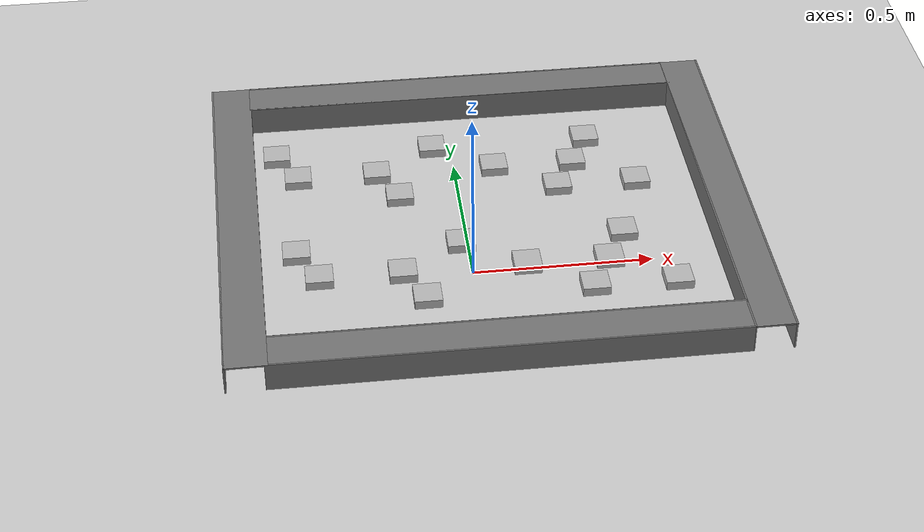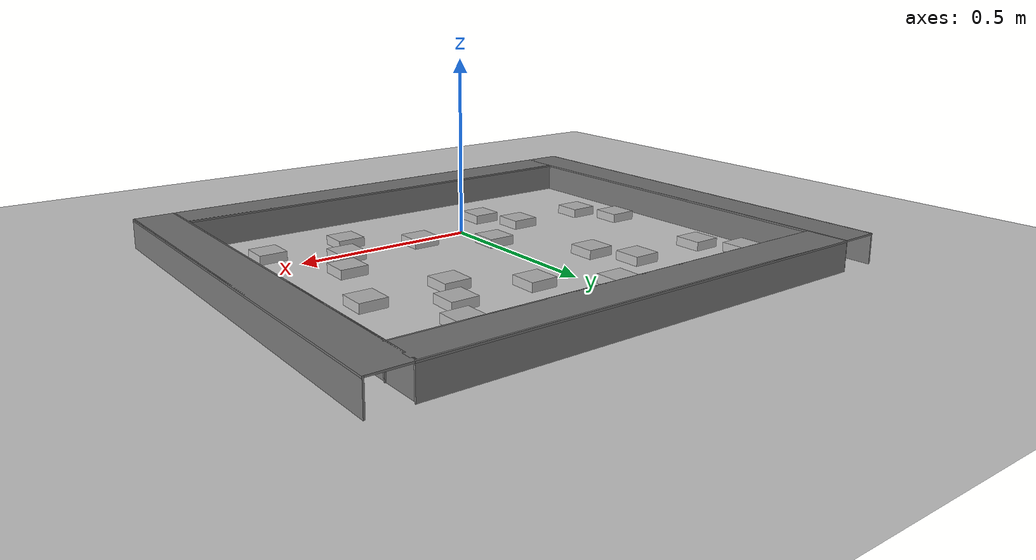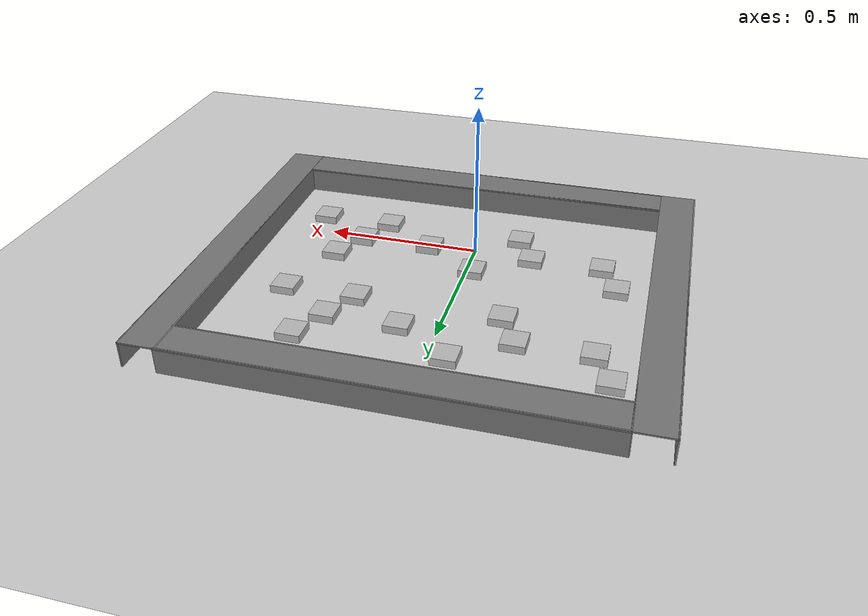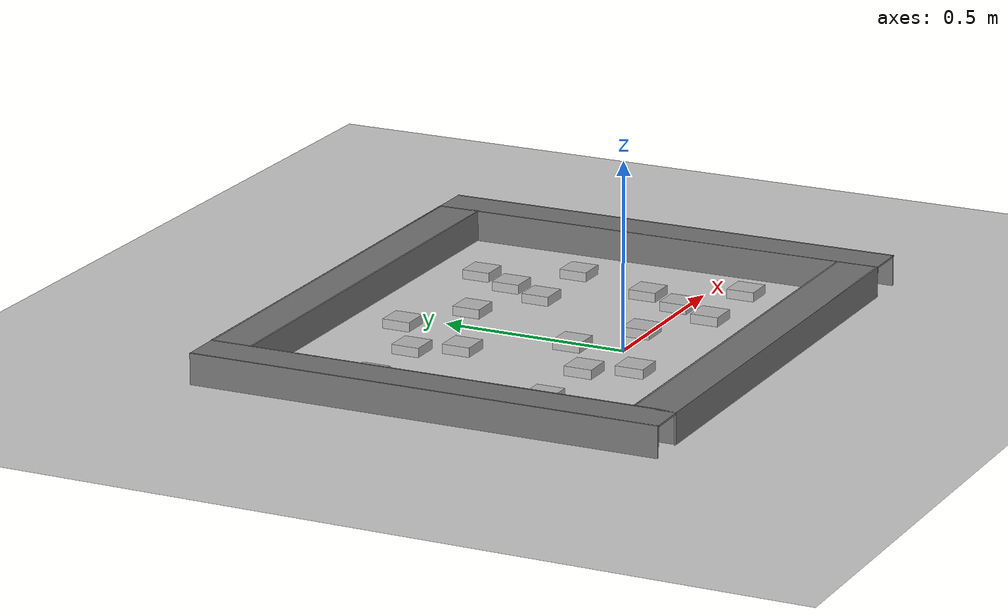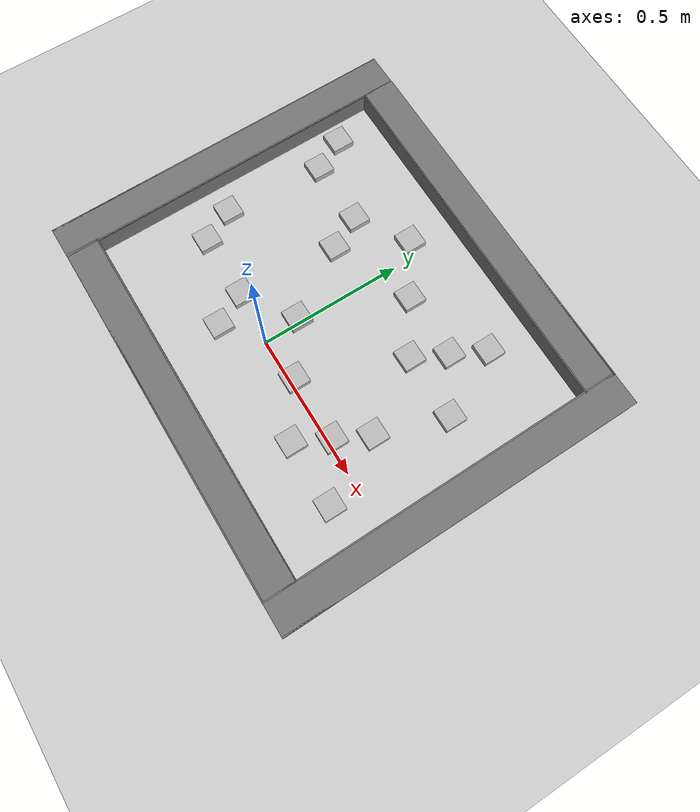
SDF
<sdf version="1.6">
 <world name="default">
  <physics type="ode">
   <ode><solver><type>quick</type><iters>50</iters><friction_model>cone_model</friction_model></solver></ode>
  </physics>
  <light name="sun" type="directional">
   <pose>0 0 10 0 -0 0</pose>
   <diffuse>0.8 0.8 0.8 1</diffuse>
   <specular>0.2 0.2 0.2 1</specular>
   <attenuation>
    <range>1000</range>
    <constant>0.9</constant>
    <linear>0.01</linear>
    <quadratic>0.001</quadratic>
   </attenuation>
   <direction>-0.5 0.1 -0.9</direction>
  </light>
  <model name="ground_plane">
   <static>1</static>
   <link name="link">
    <collision name="collision">
     <geometry><plane><normal>0 0 1</normal><size>100 100</size></plane></geometry>
     <surface>
      <contact><collide_bitmask>65535</collide_bitmask></contact>
      <friction><ode><mu>100</mu><mu2>50</mu2></ode></friction>
     </surface>
    </collision>
    <visual name="visual">
     <cast_shadows>0</cast_shadows>
     <geometry><plane><normal>0 0 1</normal><size>100 100</size></plane></geometry>
     <material>
      <script><uri>file://media/materials/scripts/gazebo.material</uri><name>Gazebo/Grey</name></script>
     </material>
    </visual>
   </link>
  </model>
  <gravity>0 0 -9.8</gravity>
  <magnetic_field>6e-06 2.3e-05 -4.2e-05</magnetic_field>
  <atmosphere type="adiabatic"/>
  <physics name="default_physics" default="0" type="ode">
   <max_step_size>0.001</max_step_size>
   <real_time_factor>1</real_time_factor>
   <real_time_update_rate>1000</real_time_update_rate>
  </physics>
  <scene><ambient>0.4 0.4 0.4 1</ambient><background>0.7 0.7 0.7 1</background><shadows>1</shadows></scene>
  <audio><device>default</device></audio>
  <spherical_coordinates>
   <surface_model>EARTH_WGS84</surface_model>
   <latitude_deg>0</latitude_deg>
   <longitude_deg>0</longitude_deg>
   <elevation>0</elevation>
   <heading_deg>0</heading_deg>
  </spherical_coordinates>
  <model name="frc2016_roughterrain">
   <static>1</static>
   <link name="link">
    <visual name="platform">
     <pose>0 0 0.08269 0 -0 0</pose>
     <geometry><box><size>1.27 0.5969 0.003175</size></box></geometry>
    </visual>
    <collision name="platform">
     <pose>0 0 0.08269 0 -0 0</pose>
     <geometry><box><size>1.27 0.5969 0.003175</size></box></geometry>
    </collision>
    <visual name="row1_block1_sm">
     <pose>0.51435 0.1143 0.09698 0 -0 0</pose>
     <geometry><box><size>0.0762 0.0762 0.0254</size></box></geometry>
    </visual>
    <collision name="row1_block1_sm">
     <pose>0.51435 0.1143 0.09698 0 -0 0</pose>
     <geometry><box><size>0.0762 0.0762 0.0254</size></box></geometry>
    </collision>
    <visual name="row1_block2_lg">
     <pose>0.40005 0.1143 0.12238 0 -0 0</pose>
     <geometry><box><size>0.0762 0.0762 0.0762</size></box></geometry>
    </visual>
    <collision name="row1_block2_lg">
     <pose>0.40005 0.1143 0.12238 0 -0 0</pose>
     <geometry><box><size>0.0762 0.0762 0.0762</size></box></geometry>
    </collision>
    <visual name="row1_block3_md">
     <pose>0.28575 0.1143 0.10968 0 -0 0</pose>
     <geometry><box><size>0.0762 0.0762 0.0508</size></box></geometry>
    </visual>
    <collision name="row1_block3_md">
     <pose>0.28575 0.1143 0.10968 0 -0 0</pose>
     <geometry><box><size>0.0762 0.0762 0.0508</size></box></geometry>
    </collision>
    <visual name="row1_block4_sm">
     <pose>0.17145 0.1143 0.09698 0 -0 0</pose>
     <geometry><box><size>0.0762 0.0762 0.0254</size></box></geometry>
    </visual>
    <collision name="row1_block4_sm">
     <pose>0.17145 0.1143 0.09698 0 -0 0</pose>
     <geometry><box><size>0.0762 0.0762 0.0254</size></box></geometry>
    </collision>
    <visual name="row1_block5_md">
     <pose>0.05715 0.1143 0.10968 0 -0 0</pose>
     <geometry><box><size>0.0762 0.0762 0.0508</size></box></geometry>
    </visual>
    <collision name="row1_block5_md">
     <pose>0.05715 0.1143 0.10968 0 -0 0</pose>
     <geometry><box><size>0.0762 0.0762 0.0508</size></box></geometry>
    </collision>
    <visual name="row1_block6_lg">
     <pose>-0.05715 0.1143 0.12238 0 -0 0</pose>
     <geometry><box><size>0.0762 0.0762 0.0762</size></box></geometry>
    </visual>
    <collision name="row1_block6_lg">
     <pose>-0.05715 0.1143 0.12238 0 -0 0</pose>
     <geometry><box><size>0.0762 0.0762 0.0762</size></box></geometry>
    </collision>
    <visual name="row1_block7_sm">
     <pose>-0.17145 0.1143 0.09698 0 -0 0</pose>
     <geometry><box><size>0.0762 0.0762 0.0254</size></box></geometry>
    </visual>
    <collision name="row1_block7_sm">
     <pose>-0.17145 0.1143 0.09698 0 -0 0</pose>
     <geometry><box><size>0.0762 0.0762 0.0254</size></box></geometry>
    </collision>
    <visual name="row1_block8_sm">
     <pose>-0.28575 0.1143 0.09698 0 -0 0</pose>
     <geometry><box><size>0.0762 0.0762 0.0254</size></box></geometry>
    </visual>
    <collision name="row1_block8_sm">
     <pose>-0.28575 0.1143 0.09698 0 -0 0</pose>
     <geometry><box><size>0.0762 0.0762 0.0254</size></box></geometry>
    </collision>
    <visual name="row1_block9_md">
     <pose>-0.40005 0.1143 0.10968 0 -0 0</pose>
     <geometry><box><size>0.0762 0.0762 0.0508</size></box></geometry>
    </visual>
    <collision name="row1_block9_md">
     <pose>-0.40005 0.1143 0.10968 0 -0 0</pose>
     <geometry><box><size>0.0762 0.0762 0.0508</size></box></geometry>
    </collision>
    <visual name="row1_block10_lg">
     <pose>-0.51435 0.1143 0.12238 0 -0 0</pose>
     <geometry><box><size>0.0762 0.0762 0.0762</size></box></geometry>
    </visual>
    <collision name="row1_block10_lg">
     <pose>-0.51435 0.1143 0.12238 0 -0 0</pose>
     <geometry><box><size>0.0762 0.0762 0.0762</size></box></geometry>
    </collision>
    <visual name="row2_block1_md">
     <pose>0.5715 0 0.10968 0 -0 0</pose>
     <geometry><box><size>0.0762 0.0762 0.0508</size></box></geometry>
    </visual>
    <collision name="row2_block1_md">
     <pose>0.5715 0 0.10968 0 -0 0</pose>
     <geometry><box><size>0.0762 0.0762 0.0508</size></box></geometry>
    </collision>
    <visual name="row2_block2_sm">
     <pose>0.4572 0 0.09698 0 -0 0</pose>
     <geometry><box><size>0.0762 0.0762 0.0254</size></box></geometry>
    </visual>
    <collision name="row2_block2_sm">
     <pose>0.4572 0 0.09698 0 -0 0</pose>
     <geometry><box><size>0.0762 0.0762 0.0254</size></box></geometry>
    </collision>
    <visual name="row2_block3_lg">
     <pose>0.3429 0 0.12238 0 -0 0</pose>
     <geometry><box><size>0.0762 0.0762 0.0762</size></box></geometry>
    </visual>
    <collision name="row2_block3_lg">
     <pose>0.3429 0 0.12238 0 -0 0</pose>
     <geometry><box><size>0.0762 0.0762 0.0762</size></box></geometry>
    </collision>
    <visual name="row2_block4_md">
     <pose>0.2286 0 0.10968 0 -0 0</pose>
     <geometry><box><size>0.0762 0.0762 0.0508</size></box></geometry>
    </visual>
    <collision name="row2_block4_md">
     <pose>0.2286 0 0.10968 0 -0 0</pose>
     <geometry><box><size>0.0762 0.0762 0.0508</size></box></geometry>
    </collision>
    <visual name="row2_block5_lg">
     <pose>0.1143 0 0.12238 0 -0 0</pose>
     <geometry><box><size>0.0762 0.0762 0.0762</size></box></geometry>
    </visual>
    <collision name="row2_block5_lg">
     <pose>0.1143 0 0.12238 0 -0 0</pose>
     <geometry><box><size>0.0762 0.0762 0.0762</size></box></geometry>
    </collision>
    <visual name="row2_block6_sm">
     <pose>0 0 0.09698 0 -0 0</pose>
     <geometry><box><size>0.0762 0.0762 0.0254</size></box></geometry>
    </visual>
    <collision name="row2_block6_sm">
     <pose>0 0 0.09698 0 -0 0</pose>
     <geometry><box><size>0.0762 0.0762 0.0254</size></box></geometry>
    </collision>
    <visual name="row2_block7_md">
     <pose>-0.1143 0 0.10968 0 -0 0</pose>
     <geometry><box><size>0.0762 0.0762 0.0508</size></box></geometry>
    </visual>
    <collision name="row2_block7_md">
     <pose>-0.1143 0 0.10968 0 -0 0</pose>
     <geometry><box><size>0.0762 0.0762 0.0508</size></box></geometry>
    </collision>
    <visual name="row2_block8_lg">
     <pose>-0.2286 0 0.12238 0 -0 0</pose>
     <geometry><box><size>0.0762 0.0762 0.0762</size></box></geometry>
    </visual>
    <collision name="row2_block8_lg">
     <pose>-0.2286 0 0.12238 0 -0 0</pose>
     <geometry><box><size>0.0762 0.0762 0.0762</size></box></geometry>
    </collision>
    <visual name="row2_block9_sm">
     <pose>-0.3429 0 0.09698 0 -0 0</pose>
     <geometry><box><size>0.0762 0.0762 0.0254</size></box></geometry>
    </visual>
    <collision name="row2_block9_sm">
     <pose>-0.3429 0 0.09698 0 -0 0</pose>
     <geometry><box><size>0.0762 0.0762 0.0254</size></box></geometry>
    </collision>
    <visual name="row2_block10_lg">
     <pose>-0.4572 0 0.12238 0 -0 0</pose>
     <geometry><box><size>0.0762 0.0762 0.0762</size></box></geometry>
    </visual>
    <collision name="row2_block10_lg">
     <pose>-0.4572 0 0.12238 0 -0 0</pose>
     <geometry><box><size>0.0762 0.0762 0.0762</size></box></geometry>
    </collision>
    <visual name="row2_block11_md">
     <pose>-0.5715 0 0.10968 0 -0 0</pose>
     <geometry><box><size>0.0762 0.0762 0.0508</size></box></geometry>
    </visual>
    <collision name="row2_block11_md">
     <pose>-0.5715 0 0.10968 0 -0 0</pose>
     <geometry><box><size>0.0762 0.0762 0.0508</size></box></geometry>
    </collision>
    <visual name="row3_block1_lg">
     <pose>0.51435 -0.1143 0.12238 0 -0 0</pose>
     <geometry><box><size>0.0762 0.0762 0.0762</size></box></geometry>
    </visual>
    <collision name="row3_block1_lg">
     <pose>0.51435 -0.1143 0.12238 0 -0 0</pose>
     <geometry><box><size>0.0762 0.0762 0.0762</size></box></geometry>
    </collision>
    <visual name="row3_block2_md">
     <pose>0.40005 -0.1143 0.10968 0 -0 0</pose>
     <geometry><box><size>0.0762 0.0762 0.0508</size></box></geometry>
    </visual>
    <collision name="row3_block2_md">
     <pose>0.40005 -0.1143 0.10968 0 -0 0</pose>
     <geometry><box><size>0.0762 0.0762 0.0508</size></box></geometry>
    </collision>
    <visual name="row3_block3_lg">
     <pose>0.28575 -0.1143 0.12238 0 -0 0</pose>
     <geometry><box><size>0.0762 0.0762 0.0762</size></box></geometry>
    </visual>
    <collision name="row3_block3_lg">
     <pose>0.28575 -0.1143 0.12238 0 -0 0</pose>
     <geometry><box><size>0.0762 0.0762 0.0762</size></box></geometry>
    </collision>
    <visual name="row3_block4_sm">
     <pose>0.17145 -0.1143 0.09698 0 -0 0</pose>
     <geometry><box><size>0.0762 0.0762 0.0254</size></box></geometry>
    </visual>
    <collision name="row3_block4_sm">
     <pose>0.17145 -0.1143 0.09698 0 -0 0</pose>
     <geometry><box><size>0.0762 0.0762 0.0254</size></box></geometry>
    </collision>
    <visual name="row3_block5_md">
     <pose>0.05715 -0.1143 0.10968 0 -0 0</pose>
     <geometry><box><size>0.0762 0.0762 0.0508</size></box></geometry>
    </visual>
    <collision name="row3_block5_md">
     <pose>0.05715 -0.1143 0.10968 0 -0 0</pose>
     <geometry><box><size>0.0762 0.0762 0.0508</size></box></geometry>
    </collision>
    <visual name="row3_block6_md">
     <pose>-0.05715 -0.1143 0.10968 0 -0 0</pose>
     <geometry><box><size>0.0762 0.0762 0.0508</size></box></geometry>
    </visual>
    <collision name="row3_block6_md">
     <pose>-0.05715 -0.1143 0.10968 0 -0 0</pose>
     <geometry><box><size>0.0762 0.0762 0.0508</size></box></geometry>
    </collision>
    <visual name="row3_block7_lg">
     <pose>-0.17145 -0.1143 0.12238 0 -0 0</pose>
     <geometry><box><size>0.0762 0.0762 0.0762</size></box></geometry>
    </visual>
    <collision name="row3_block7_lg">
     <pose>-0.17145 -0.1143 0.12238 0 -0 0</pose>
     <geometry><box><size>0.0762 0.0762 0.0762</size></box></geometry>
    </collision>
    <visual name="row3_block8_sm">
     <pose>-0.28575 -0.1143 0.09698 0 -0 0</pose>
     <geometry><box><size>0.0762 0.0762 0.0254</size></box></geometry>
    </visual>
    <collision name="row3_block8_sm">
     <pose>-0.28575 -0.1143 0.09698 0 -0 0</pose>
     <geometry><box><size>0.0762 0.0762 0.0254</size></box></geometry>
    </collision>
    <visual name="row3_block9_md">
     <pose>-0.40005 -0.1143 0.10968 0 -0 0</pose>
     <geometry><box><size>0.0762 0.0762 0.0508</size></box></geometry>
    </visual>
    <collision name="row3_block9_md">
     <pose>-0.40005 -0.1143 0.10968 0 -0 0</pose>
     <geometry><box><size>0.0762 0.0762 0.0508</size></box></geometry>
    </collision>
    <visual name="row3_block10_sm">
     <pose>-0.51435 -0.1143 0.09698 0 -0 0</pose>
     <geometry><box><size>0.0762 0.0762 0.0254</size></box></geometry>
    </visual>
    <collision name="row3_block10_sm">
     <pose>-0.51435 -0.1143 0.09698 0 -0 0</pose>
     <geometry><box><size>0.0762 0.0762 0.0254</size></box></geometry>
    </collision>
   </link>
   <pose>0.037464 0.017687 -0.137986 0 -0 0</pose>
  </model>
  <model name="frc2016_roughterrain_clone">
   <static>1</static>
   <link name="link">
    <visual name="platform">
     <pose>0 0 0.08269 0 -0 0</pose>
     <geometry><box><size>1.27 0.5969 0.003175</size></box></geometry>
    </visual>
    <collision name="platform">
     <pose>0 0 0.08269 0 -0 0</pose>
     <geometry><box><size>1.27 0.5969 0.003175</size></box></geometry>
    </collision>
    <visual name="row1_block1_sm">
     <pose>0.51435 0.1143 0.09698 0 -0 0</pose>
     <geometry><box><size>0.0762 0.0762 0.0254</size></box></geometry>
    </visual>
    <collision name="row1_block1_sm">
     <pose>0.51435 0.1143 0.09698 0 -0 0</pose>
     <geometry><box><size>0.0762 0.0762 0.0254</size></box></geometry>
    </collision>
    <visual name="row1_block2_lg">
     <pose>0.40005 0.1143 0.12238 0 -0 0</pose>
     <geometry><box><size>0.0762 0.0762 0.0762</size></box></geometry>
    </visual>
    <collision name="row1_block2_lg">
     <pose>0.40005 0.1143 0.12238 0 -0 0</pose>
     <geometry><box><size>0.0762 0.0762 0.0762</size></box></geometry>
    </collision>
    <visual name="row1_block3_md">
     <pose>0.28575 0.1143 0.10968 0 -0 0</pose>
     <geometry><box><size>0.0762 0.0762 0.0508</size></box></geometry>
    </visual>
    <collision name="row1_block3_md">
     <pose>0.28575 0.1143 0.10968 0 -0 0</pose>
     <geometry><box><size>0.0762 0.0762 0.0508</size></box></geometry>
    </collision>
    <visual name="row1_block4_sm">
     <pose>0.17145 0.1143 0.09698 0 -0 0</pose>
     <geometry><box><size>0.0762 0.0762 0.0254</size></box></geometry>
    </visual>
    <collision name="row1_block4_sm">
     <pose>0.17145 0.1143 0.09698 0 -0 0</pose>
     <geometry><box><size>0.0762 0.0762 0.0254</size></box></geometry>
    </collision>
    <visual name="row1_block5_md">
     <pose>0.05715 0.1143 0.10968 0 -0 0</pose>
     <geometry><box><size>0.0762 0.0762 0.0508</size></box></geometry>
    </visual>
    <collision name="row1_block5_md">
     <pose>0.05715 0.1143 0.10968 0 -0 0</pose>
     <geometry><box><size>0.0762 0.0762 0.0508</size></box></geometry>
    </collision>
    <visual name="row1_block6_lg">
     <pose>-0.05715 0.1143 0.12238 0 -0 0</pose>
     <geometry><box><size>0.0762 0.0762 0.0762</size></box></geometry>
    </visual>
    <collision name="row1_block6_lg">
     <pose>-0.05715 0.1143 0.12238 0 -0 0</pose>
     <geometry><box><size>0.0762 0.0762 0.0762</size></box></geometry>
    </collision>
    <visual name="row1_block7_sm">
     <pose>-0.17145 0.1143 0.09698 0 -0 0</pose>
     <geometry><box><size>0.0762 0.0762 0.0254</size></box></geometry>
    </visual>
    <collision name="row1_block7_sm">
     <pose>-0.17145 0.1143 0.09698 0 -0 0</pose>
     <geometry><box><size>0.0762 0.0762 0.0254</size></box></geometry>
    </collision>
    <visual name="row1_block8_sm">
     <pose>-0.28575 0.1143 0.09698 0 -0 0</pose>
     <geometry><box><size>0.0762 0.0762 0.0254</size></box></geometry>
    </visual>
    <collision name="row1_block8_sm">
     <pose>-0.28575 0.1143 0.09698 0 -0 0</pose>
     <geometry><box><size>0.0762 0.0762 0.0254</size></box></geometry>
    </collision>
    <visual name="row1_block9_md">
     <pose>-0.40005 0.1143 0.10968 0 -0 0</pose>
     <geometry><box><size>0.0762 0.0762 0.0508</size></box></geometry>
    </visual>
    <collision name="row1_block9_md">
     <pose>-0.40005 0.1143 0.10968 0 -0 0</pose>
     <geometry><box><size>0.0762 0.0762 0.0508</size></box></geometry>
    </collision>
    <visual name="row1_block10_lg">
     <pose>-0.51435 0.1143 0.12238 0 -0 0</pose>
     <geometry><box><size>0.0762 0.0762 0.0762</size></box></geometry>
    </visual>
    <collision name="row1_block10_lg">
     <pose>-0.51435 0.1143 0.12238 0 -0 0</pose>
     <geometry><box><size>0.0762 0.0762 0.0762</size></box></geometry>
    </collision>
    <visual name="row2_block1_md">
     <pose>0.5715 0 0.10968 0 -0 0</pose>
     <geometry><box><size>0.0762 0.0762 0.0508</size></box></geometry>
    </visual>
    <collision name="row2_block1_md">
     <pose>0.5715 0 0.10968 0 -0 0</pose>
     <geometry><box><size>0.0762 0.0762 0.0508</size></box></geometry>
    </collision>
    <visual name="row2_block2_sm">
     <pose>0.4572 0 0.09698 0 -0 0</pose>
     <geometry><box><size>0.0762 0.0762 0.0254</size></box></geometry>
    </visual>
    <collision name="row2_block2_sm">
     <pose>0.4572 0 0.09698 0 -0 0</pose>
     <geometry><box><size>0.0762 0.0762 0.0254</size></box></geometry>
    </collision>
    <visual name="row2_block3_lg">
     <pose>0.3429 0 0.12238 0 -0 0</pose>
     <geometry><box><size>0.0762 0.0762 0.0762</size></box></geometry>
    </visual>
    <collision name="row2_block3_lg">
     <pose>0.3429 0 0.12238 0 -0 0</pose>
     <geometry><box><size>0.0762 0.0762 0.0762</size></box></geometry>
    </collision>
    <visual name="row2_block4_md">
     <pose>0.2286 0 0.10968 0 -0 0</pose>
     <geometry><box><size>0.0762 0.0762 0.0508</size></box></geometry>
    </visual>
    <collision name="row2_block4_md">
     <pose>0.2286 0 0.10968 0 -0 0</pose>
     <geometry><box><size>0.0762 0.0762 0.0508</size></box></geometry>
    </collision>
    <visual name="row2_block5_lg">
     <pose>0.1143 0 0.12238 0 -0 0</pose>
     <geometry><box><size>0.0762 0.0762 0.0762</size></box></geometry>
    </visual>
    <collision name="row2_block5_lg">
     <pose>0.1143 0 0.12238 0 -0 0</pose>
     <geometry><box><size>0.0762 0.0762 0.0762</size></box></geometry>
    </collision>
    <visual name="row2_block6_sm">
     <pose>0 0 0.09698 0 -0 0</pose>
     <geometry><box><size>0.0762 0.0762 0.0254</size></box></geometry>
    </visual>
    <collision name="row2_block6_sm">
     <pose>0 0 0.09698 0 -0 0</pose>
     <geometry><box><size>0.0762 0.0762 0.0254</size></box></geometry>
    </collision>
    <visual name="row2_block7_md">
     <pose>-0.1143 0 0.10968 0 -0 0</pose>
     <geometry><box><size>0.0762 0.0762 0.0508</size></box></geometry>
    </visual>
    <collision name="row2_block7_md">
     <pose>-0.1143 0 0.10968 0 -0 0</pose>
     <geometry><box><size>0.0762 0.0762 0.0508</size></box></geometry>
    </collision>
    <visual name="row2_block8_lg">
     <pose>-0.2286 0 0.12238 0 -0 0</pose>
     <geometry><box><size>0.0762 0.0762 0.0762</size></box></geometry>
    </visual>
    <collision name="row2_block8_lg">
     <pose>-0.2286 0 0.12238 0 -0 0</pose>
     <geometry><box><size>0.0762 0.0762 0.0762</size></box></geometry>
    </collision>
    <visual name="row2_block9_sm">
     <pose>-0.3429 0 0.09698 0 -0 0</pose>
     <geometry><box><size>0.0762 0.0762 0.0254</size></box></geometry>
    </visual>
    <collision name="row2_block9_sm">
     <pose>-0.3429 0 0.09698 0 -0 0</pose>
     <geometry><box><size>0.0762 0.0762 0.0254</size></box></geometry>
    </collision>
    <visual name="row2_block10_lg">
     <pose>-0.4572 0 0.12238 0 -0 0</pose>
     <geometry><box><size>0.0762 0.0762 0.0762</size></box></geometry>
    </visual>
    <collision name="row2_block10_lg">
     <pose>-0.4572 0 0.12238 0 -0 0</pose>
     <geometry><box><size>0.0762 0.0762 0.0762</size></box></geometry>
    </collision>
    <visual name="row2_block11_md">
     <pose>-0.5715 0 0.10968 0 -0 0</pose>
     <geometry><box><size>0.0762 0.0762 0.0508</size></box></geometry>
    </visual>
    <collision name="row2_block11_md">
     <pose>-0.5715 0 0.10968 0 -0 0</pose>
     <geometry><box><size>0.0762 0.0762 0.0508</size></box></geometry>
    </collision>
    <visual name="row3_block1_lg">
     <pose>0.51435 -0.1143 0.12238 0 -0 0</pose>
     <geometry><box><size>0.0762 0.0762 0.0762</size></box></geometry>
    </visual>
    <collision name="row3_block1_lg">
     <pose>0.51435 -0.1143 0.12238 0 -0 0</pose>
     <geometry><box><size>0.0762 0.0762 0.0762</size></box></geometry>
    </collision>
    <visual name="row3_block2_md">
     <pose>0.40005 -0.1143 0.10968 0 -0 0</pose>
     <geometry><box><size>0.0762 0.0762 0.0508</size></box></geometry>
    </visual>
    <collision name="row3_block2_md">
     <pose>0.40005 -0.1143 0.10968 0 -0 0</pose>
     <geometry><box><size>0.0762 0.0762 0.0508</size></box></geometry>
    </collision>
    <visual name="row3_block3_lg">
     <pose>0.28575 -0.1143 0.12238 0 -0 0</pose>
     <geometry><box><size>0.0762 0.0762 0.0762</size></box></geometry>
    </visual>
    <collision name="row3_block3_lg">
     <pose>0.28575 -0.1143 0.12238 0 -0 0</pose>
     <geometry><box><size>0.0762 0.0762 0.0762</size></box></geometry>
    </collision>
    <visual name="row3_block4_sm">
     <pose>0.17145 -0.1143 0.09698 0 -0 0</pose>
     <geometry><box><size>0.0762 0.0762 0.0254</size></box></geometry>
    </visual>
    <collision name="row3_block4_sm">
     <pose>0.17145 -0.1143 0.09698 0 -0 0</pose>
     <geometry><box><size>0.0762 0.0762 0.0254</size></box></geometry>
    </collision>
    <visual name="row3_block5_md">
     <pose>0.05715 -0.1143 0.10968 0 -0 0</pose>
     <geometry><box><size>0.0762 0.0762 0.0508</size></box></geometry>
    </visual>
    <collision name="row3_block5_md">
     <pose>0.05715 -0.1143 0.10968 0 -0 0</pose>
     <geometry><box><size>0.0762 0.0762 0.0508</size></box></geometry>
    </collision>
    <visual name="row3_block6_md">
     <pose>-0.05715 -0.1143 0.10968 0 -0 0</pose>
     <geometry><box><size>0.0762 0.0762 0.0508</size></box></geometry>
    </visual>
    <collision name="row3_block6_md">
     <pose>-0.05715 -0.1143 0.10968 0 -0 0</pose>
     <geometry><box><size>0.0762 0.0762 0.0508</size></box></geometry>
    </collision>
    <visual name="row3_block7_lg">
     <pose>-0.17145 -0.1143 0.12238 0 -0 0</pose>
     <geometry><box><size>0.0762 0.0762 0.0762</size></box></geometry>
    </visual>
    <collision name="row3_block7_lg">
     <pose>-0.17145 -0.1143 0.12238 0 -0 0</pose>
     <geometry><box><size>0.0762 0.0762 0.0762</size></box></geometry>
    </collision>
    <visual name="row3_block8_sm">
     <pose>-0.28575 -0.1143 0.09698 0 -0 0</pose>
     <geometry><box><size>0.0762 0.0762 0.0254</size></box></geometry>
    </visual>
    <collision name="row3_block8_sm">
     <pose>-0.28575 -0.1143 0.09698 0 -0 0</pose>
     <geometry><box><size>0.0762 0.0762 0.0254</size></box></geometry>
    </collision>
    <visual name="row3_block9_md">
     <pose>-0.40005 -0.1143 0.10968 0 -0 0</pose>
     <geometry><box><size>0.0762 0.0762 0.0508</size></box></geometry>
    </visual>
    <collision name="row3_block9_md">
     <pose>-0.40005 -0.1143 0.10968 0 -0 0</pose>
     <geometry><box><size>0.0762 0.0762 0.0508</size></box></geometry>
    </collision>
    <visual name="row3_block10_sm">
     <pose>-0.51435 -0.1143 0.09698 0 -0 0</pose>
     <geometry><box><size>0.0762 0.0762 0.0254</size></box></geometry>
    </visual>
    <collision name="row3_block10_sm">
     <pose>-0.51435 -0.1143 0.09698 0 -0 0</pose>
     <geometry><box><size>0.0762 0.0762 0.0254</size></box></geometry>
    </collision>
   </link>
   <pose>0.001668 0.482568 -0.137986 0 -0 0</pose>
  </model>
  <model name="frc2016_rockwall">
   <static>1</static>
   <link name="link">
    <inertial>
     <mass>10</mass>
     <pose>0 0 0.08974 0 -0 0</pose>
     <inertia><ixx>0.327091</ixx><ixy>0</ixy><ixz>0</ixz><iyy>1.37417</iyy><iyz>0</iyz><izz>1.64109</izz></inertia>
    </inertial>
    <visual name="platform">
     <pose>0 0 0.06432 0 -0 0</pose>
     <geometry><box><size>1.27 0.5969 0.003175</size></box></geometry>
    </visual>
    <collision name="platform">
     <pose>0 0 0.06432 0 -0 0</pose>
     <geometry><box><size>1.27 0.5969 0.003175</size></box></geometry>
    </collision>
    <visual name="up1">
     <pose>0 0.05166 0.12537 0 -0 0</pose>
     <geometry><box><size>1.27 0.00462 0.11892</size></box></geometry>
     <material><ambient>0.46 0.46 0.46 1</ambient><diffuse>0.46 0.46 0.46 1</diffuse></material>
    </visual>
    <collision name="up1">
     <pose>0 0.05166 0.12537 0 -0 0</pose>
     <geometry><box><size>1.27 0.00462 0.11892</size></box></geometry>
    </collision>
    <visual name="up2">
     <pose>0 -0.05801 0.12537 0 -0 0</pose>
     <geometry><box><size>1.27 0.00462 0.11892</size></box></geometry>
     <material><ambient>0.46 0.46 0.46 1</ambient><diffuse>0.46 0.46 0.46 1</diffuse></material>
    </visual>
    <collision name="up2">
     <pose>0 -0.05801 0.12537 0 -0 0</pose>
     <geometry><box><size>1.27 0.00462 0.11892</size></box></geometry>
    </collision>
    <visual name="top">
     <pose>0 -0.00249 0.18252 0 -0 0</pose>
     <geometry><box><size>1.27 0.1143 0.00462</size></box></geometry>
     <material><ambient>0.46 0.46 0.46 1</ambient><diffuse>0.46 0.46 0.46 1</diffuse></material>
    </visual>
    <collision name="top">
     <pose>0 -0.00249 0.18252 0 -0 0</pose>
     <geometry><box><size>1.27 0.1143 0.00462</size></box></geometry>
    </collision>
   </link>
   <pose>0.05613 -0.348818 -0.105002 0 -0 0</pose>
  </model>
  <model name="frc2016_rockwall_clone">
   <static>1</static>
   <link name="link">
    <inertial>
     <mass>10</mass>
     <pose>0 0 0.08974 0 -0 0</pose>
     <inertia><ixx>0.327091</ixx><ixy>0</ixy><ixz>0</ixz><iyy>1.37417</iyy><iyz>0</iyz><izz>1.64109</izz></inertia>
    </inertial>
    <visual name="platform">
     <pose>0 0 0.06432 0 -0 0</pose>
     <geometry><box><size>1.27 0.5969 0.003175</size></box></geometry>
    </visual>
    <collision name="platform">
     <pose>0 0 0.06432 0 -0 0</pose>
     <geometry><box><size>1.27 0.5969 0.003175</size></box></geometry>
    </collision>
    <visual name="up1">
     <pose>0 0.05166 0.12537 0 -0 0</pose>
     <geometry><box><size>1.27 0.00462 0.11892</size></box></geometry>
     <material><ambient>0.46 0.46 0.46 1</ambient><diffuse>0.46 0.46 0.46 1</diffuse></material>
    </visual>
    <collision name="up1">
     <pose>0 0.05166 0.12537 0 -0 0</pose>
     <geometry><box><size>1.27 0.00462 0.11892</size></box></geometry>
    </collision>
    <visual name="up2">
     <pose>0 -0.05801 0.12537 0 -0 0</pose>
     <geometry><box><size>1.27 0.00462 0.11892</size></box></geometry>
     <material><ambient>0.46 0.46 0.46 1</ambient><diffuse>0.46 0.46 0.46 1</diffuse></material>
    </visual>
    <collision name="up2">
     <pose>0 -0.05801 0.12537 0 -0 0</pose>
     <geometry><box><size>1.27 0.00462 0.11892</size></box></geometry>
    </collision>
    <visual name="top">
     <pose>0 -0.00249 0.18252 0 -0 0</pose>
     <geometry><box><size>1.27 0.1143 0.00462</size></box></geometry>
     <material><ambient>0.46 0.46 0.46 1</ambient><diffuse>0.46 0.46 0.46 1</diffuse></material>
    </visual>
    <collision name="top">
     <pose>0 -0.00249 0.18252 0 -0 0</pose>
     <geometry><box><size>1.27 0.1143 0.00462</size></box></geometry>
    </collision>
   </link>
   <pose>0.05273 0.807547 -0.105002 0 -0 0</pose>
  </model>
  <model name="frc2016_rockwall_clone_0">
   <static>1</static>
   <link name="link">
    <inertial>
     <mass>10</mass>
     <pose>0 0 0.08974 0 -0 0</pose>
     <inertia><ixx>0.327091</ixx><ixy>0</ixy><ixz>0</ixz><iyy>1.37417</iyy><iyz>0</iyz><izz>1.64109</izz></inertia>
    </inertial>
    <visual name="platform">
     <pose>0 0 0.06432 0 -0 0</pose>
     <geometry><box><size>1.27 0.5969 0.003175</size></box></geometry>
    </visual>
    <collision name="platform">
     <pose>0 0 0.06432 0 -0 0</pose>
     <geometry><box><size>1.27 0.5969 0.003175</size></box></geometry>
    </collision>
    <visual name="up1">
     <pose>0 0.05166 0.12537 0 -0 0</pose>
     <geometry><box><size>1.27 0.00462 0.11892</size></box></geometry>
     <material><ambient>0.46 0.46 0.46 1</ambient><diffuse>0.46 0.46 0.46 1</diffuse></material>
    </visual>
    <collision name="up1">
     <pose>0 0.05166 0.12537 0 -0 0</pose>
     <geometry><box><size>1.27 0.00462 0.11892</size></box></geometry>
    </collision>
    <visual name="up2">
     <pose>0 -0.05801 0.12537 0 -0 0</pose>
     <geometry><box><size>1.27 0.00462 0.11892</size></box></geometry>
     <material><ambient>0.46 0.46 0.46 1</ambient><diffuse>0.46 0.46 0.46 1</diffuse></material>
    </visual>
    <collision name="up2">
     <pose>0 -0.05801 0.12537 0 -0 0</pose>
     <geometry><box><size>1.27 0.00462 0.11892</size></box></geometry>
    </collision>
    <visual name="top">
     <pose>0 -0.00249 0.18252 0 -0 0</pose>
     <geometry><box><size>1.27 0.1143 0.00462</size></box></geometry>
     <material><ambient>0.46 0.46 0.46 1</ambient><diffuse>0.46 0.46 0.46 1</diffuse></material>
    </visual>
    <collision name="top">
     <pose>0 -0.00249 0.18252 0 -0 0</pose>
     <geometry><box><size>1.27 0.1143 0.00462</size></box></geometry>
    </collision>
   </link>
   <pose>0.744549 0.226818 -0.105002 0 0 -1.56278</pose>
  </model>
  <model name="frc2016_rockwall_clone_0_clone">
   <static>1</static>
   <link name="link">
    <inertial>
     <mass>10</mass>
     <pose>0 0 0.08974 0 -0 0</pose>
     <inertia><ixx>0.327091</ixx><ixy>0</ixy><ixz>0</ixz><iyy>1.37417</iyy><iyz>0</iyz><izz>1.64109</izz></inertia>
    </inertial>
    <visual name="platform">
     <pose>0 0 0.06432 0 -0 0</pose>
     <geometry><box><size>1.27 0.5969 0.003175</size></box></geometry>
    </visual>
    <collision name="platform">
     <pose>0 0 0.06432 0 -0 0</pose>
     <geometry><box><size>1.27 0.5969 0.003175</size></box></geometry>
    </collision>
    <visual name="up1">
     <pose>0 0.05166 0.12537 0 -0 0</pose>
     <geometry><box><size>1.27 0.00462 0.11892</size></box></geometry>
     <material><ambient>0.46 0.46 0.46 1</ambient><diffuse>0.46 0.46 0.46 1</diffuse></material>
    </visual>
    <collision name="up1">
     <pose>0 0.05166 0.12537 0 -0 0</pose>
     <geometry><box><size>1.27 0.00462 0.11892</size></box></geometry>
    </collision>
    <visual name="up2">
     <pose>0 -0.05801 0.12537 0 -0 0</pose>
     <geometry><box><size>1.27 0.00462 0.11892</size></box></geometry>
     <material><ambient>0.46 0.46 0.46 1</ambient><diffuse>0.46 0.46 0.46 1</diffuse></material>
    </visual>
    <collision name="up2">
     <pose>0 -0.05801 0.12537 0 -0 0</pose>
     <geometry><box><size>1.27 0.00462 0.11892</size></box></geometry>
    </collision>
    <visual name="top">
     <pose>0 -0.00249 0.18252 0 -0 0</pose>
     <geometry><box><size>1.27 0.1143 0.00462</size></box></geometry>
     <material><ambient>0.46 0.46 0.46 1</ambient><diffuse>0.46 0.46 0.46 1</diffuse></material>
    </visual>
    <collision name="top">
     <pose>0 -0.00249 0.18252 0 -0 0</pose>
     <geometry><box><size>1.27 0.1143 0.00462</size></box></geometry>
    </collision>
   </link>
   <pose>-0.629128 0.225514 -0.105002 0 0 -1.56278</pose>
  </model>
 </world>
</sdf>
